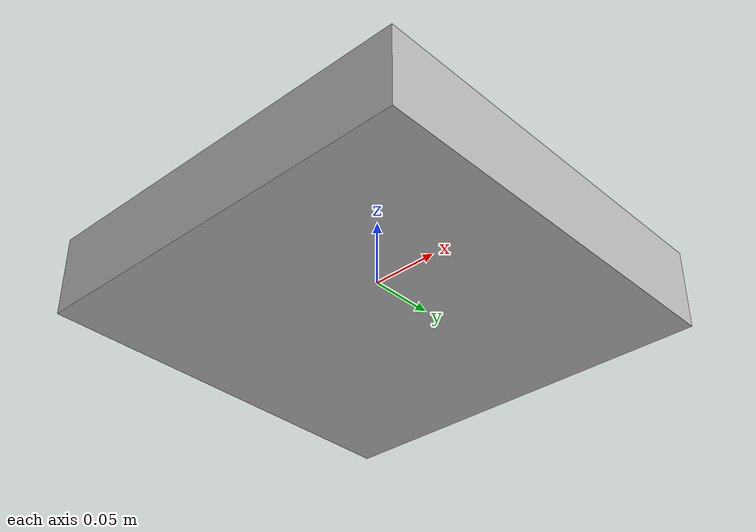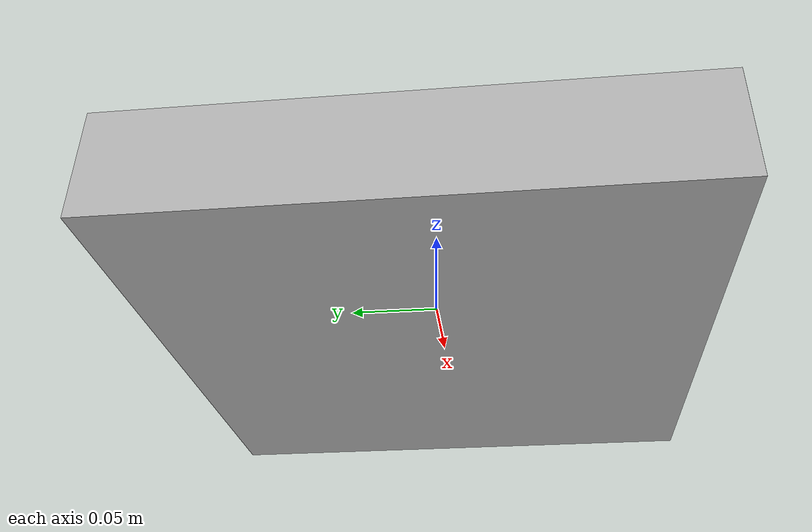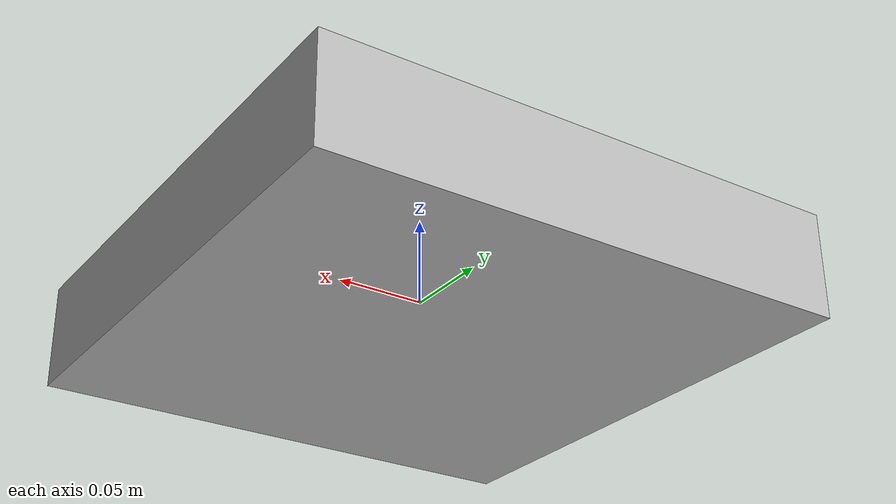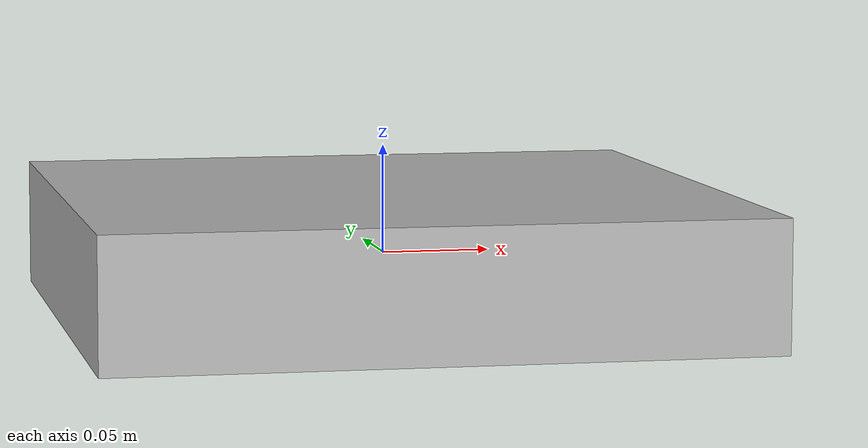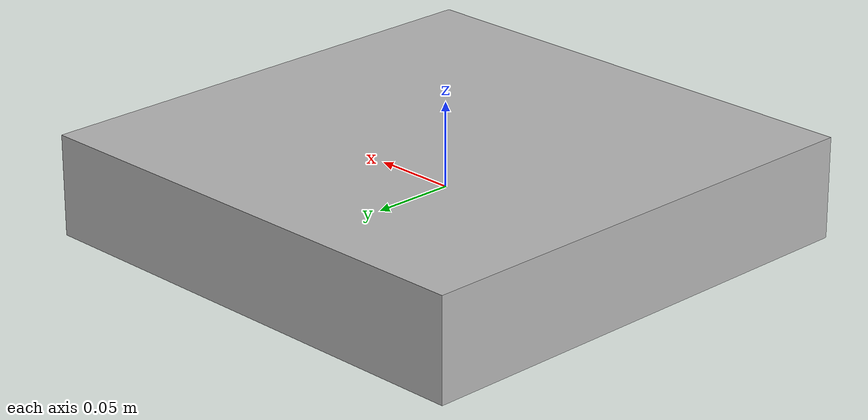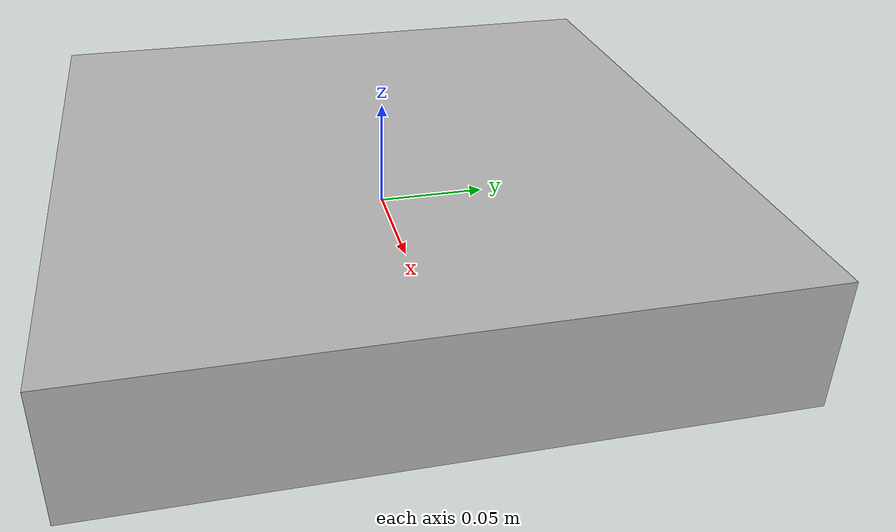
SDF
<?xml  version="1.0" ?>
<sdf version="1.5">

 <model name='aruco_box'>
      <static>false</static>
      <link name='base_link'>
        <inertial>
          <mass>0.6</mass>
          <inertia>
            <ixx>0.01019555</ixx>
            <ixy>0.00032783</ixy>
            <ixz>-0.00010803</ixz>
            <iyy>0.01374997</iyy>
            <iyz>-0.00032146</iyz>
            <izz>0.02099692</izz>
          </inertia>
          <pose>-0.00106 -0.00556 -0.00581 0 0 3.141592654</pose>
        </inertial>
        <collision name='collision'>
          <geometry>
            <box>
              <size>0.3 0.3 0.06</size>
            </box>
          </geometry>
          <surface>
            <contact>
              <ode/>
              <collide_bitmask>0x01</collide_bitmask>
            </contact>
            <bounce/>
            <friction>
              <torsional>
                <ode/>
              </torsional>
              <ode/>
            </friction>
          </surface>
          <max_contacts>10</max_contacts>
        </collision>
        <visual name='aruco_box_mesh'>
          <geometry>
            <mesh>
                <uri>model://aruco_box/model.dae</uri>
                <scale>0.15 0.15 0.03</scale>
                <!-- Note box has side lenth 2m so scale based on that--> <!-- Remember to change t_MARKER_REL_LOAD in load node - swarm load carry -->
                <!-- Also change worlds/default.sdf spawn location of box & tether-box joints. Changing this will change where the tethers connect to on the load-->
            </mesh>
          </geometry>
        </visual>
        <self_collide>0</self_collide>
        <enable_wind>0</enable_wind>
        <kinematic>0</kinematic>
      </link>

      <!-- Publish ground truth box position -->
      <!-- Note that the load is interpreted as a static entity as it is moved by the drones through attachements-->
      <plugin filename="libignition-gazebo-pose-publisher-system"
        name="ignition::gazebo::systems::PosePublisher">
        <publish_link_pose>true</publish_link_pose>
        <publish_sensor_pose>false</publish_sensor_pose>
        <publish_collision_pose>false</publish_collision_pose>
        <publish_visual_pose>false</publish_visual_pose>
        <publish_nested_model_pose>true</publish_nested_model_pose>
        <use_pose_vector_msg>true</use_pose_vector_msg>
        <update_frequency>0</update_frequency>
        <static_publisher>true</static_publisher>
        <static_update_frequency>60</static_update_frequency>
      </plugin>

    </model>

</sdf>
